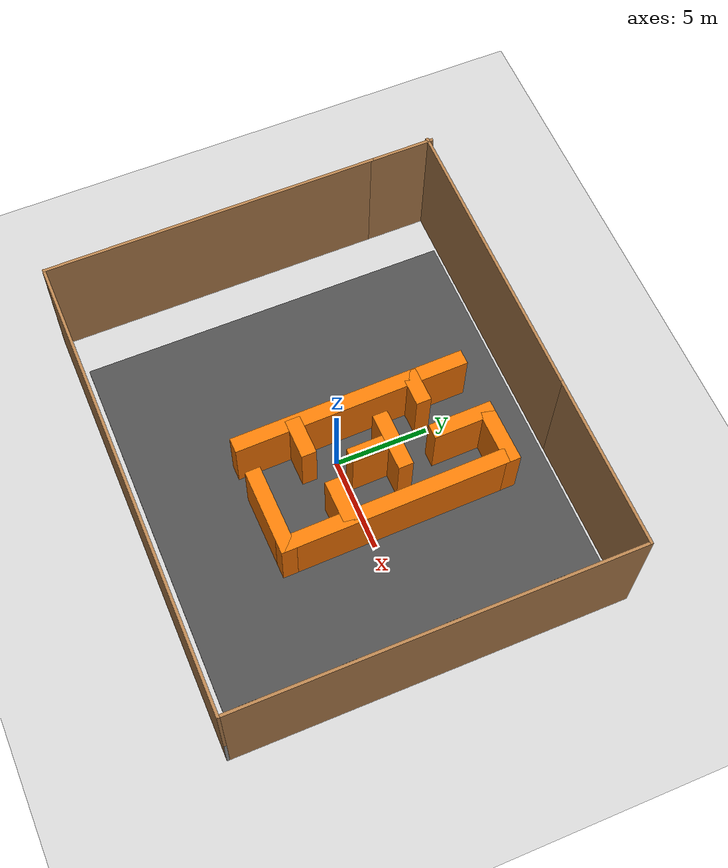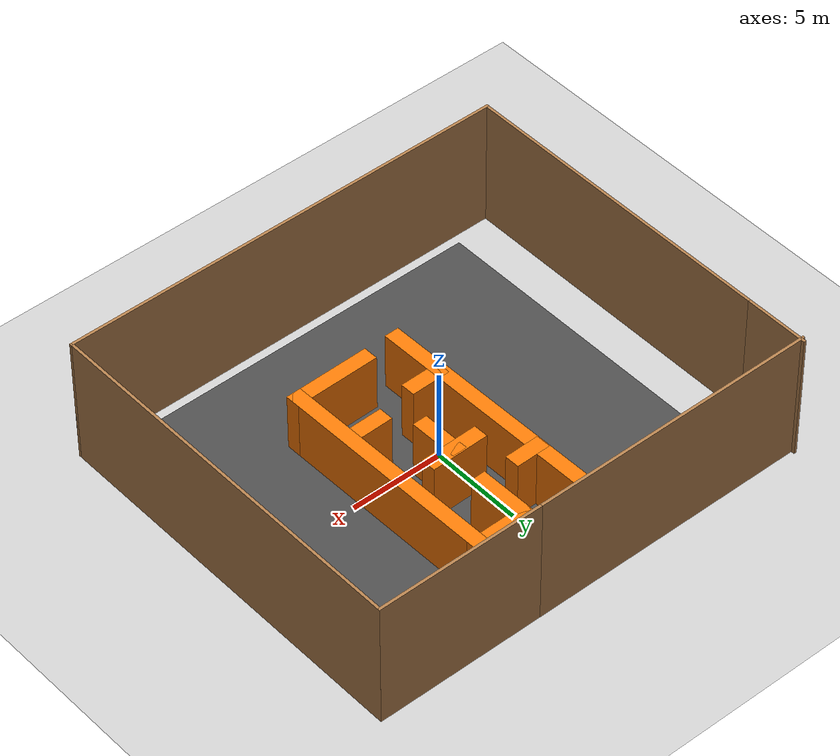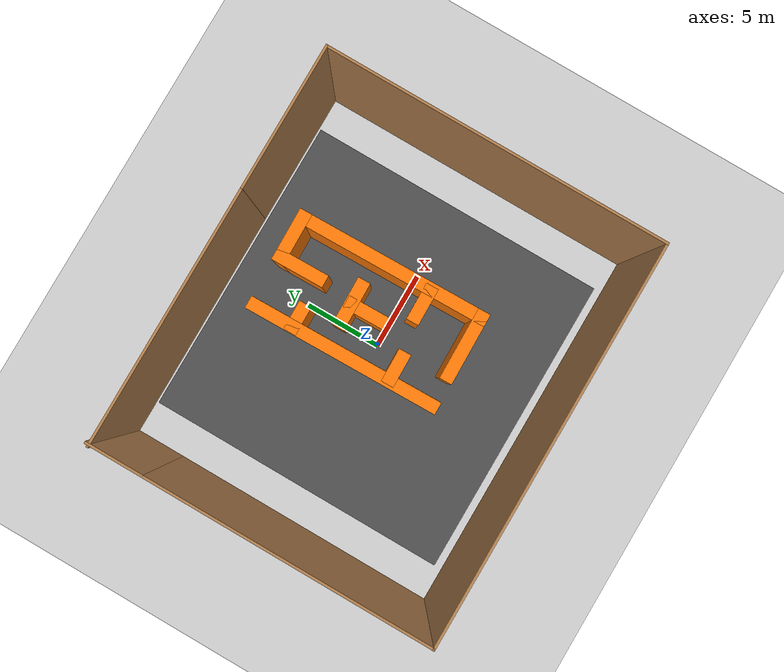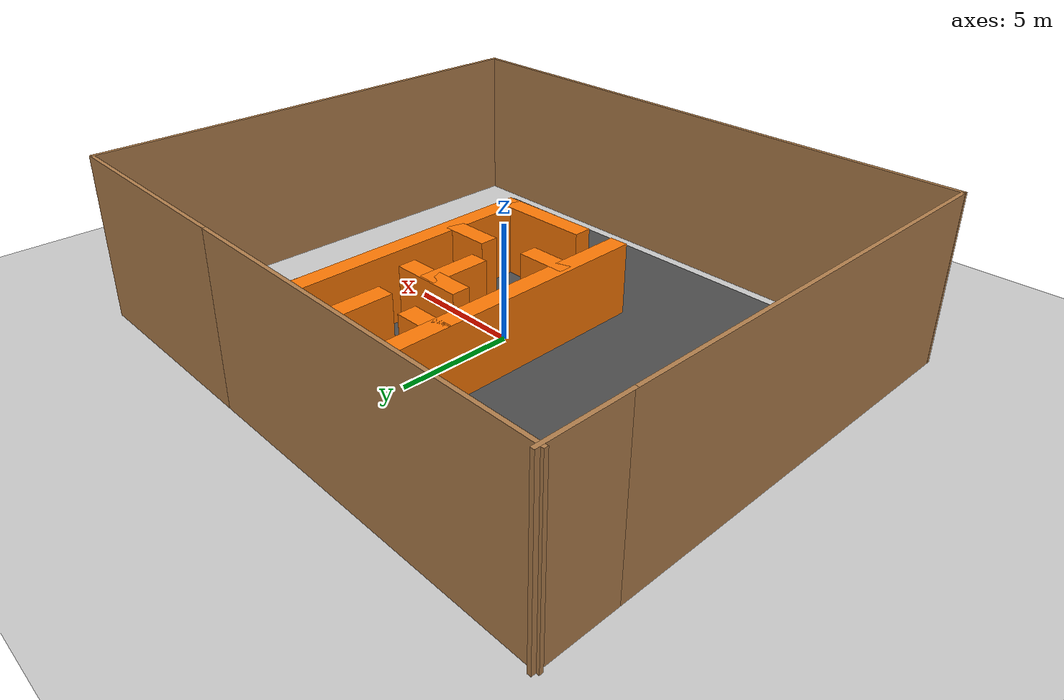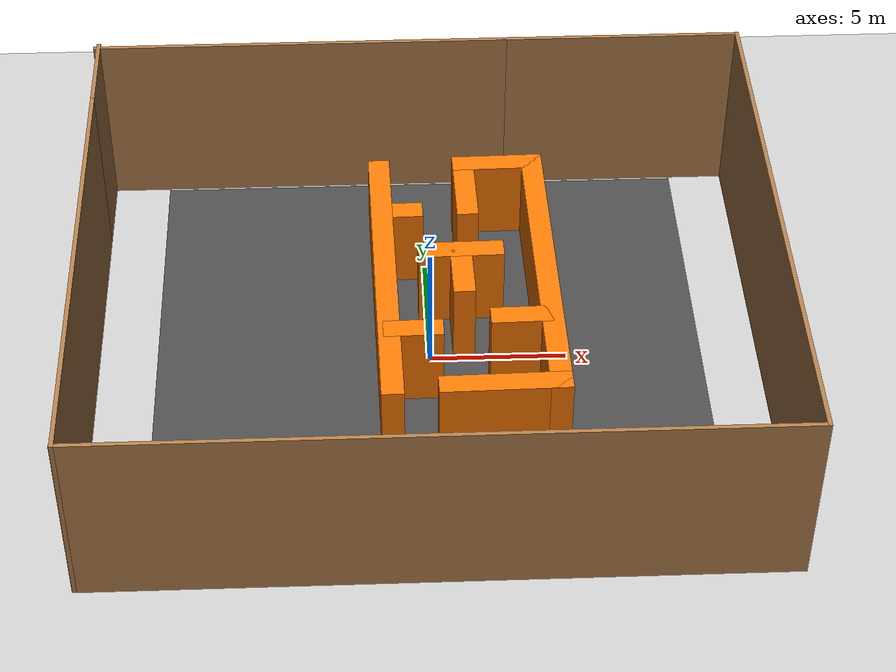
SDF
<sdf version="1.6">
 <world name="default">
  <light name="sun" type="directional">
   <pose>0 0 10 0 -0 0</pose>
   <diffuse>0.8 0.8 0.8 1</diffuse>
   <specular>0.2 0.2 0.2 1</specular>
   <attenuation>
    <range>1000</range>
    <constant>0.9</constant>
    <linear>0.01</linear>
    <quadratic>0.001</quadratic>
   </attenuation>
   <direction>-0.5 0.1 -0.9</direction>
  </light>
  <model name="ground_plane">
   <static>1</static>
   <link name="link">
    <collision name="collision">
     <geometry><plane><normal>0 0 1</normal><size>100 100</size></plane></geometry>
     <surface><friction><ode><mu>100</mu><mu2>50</mu2></ode></friction></surface>
    </collision>
    <visual name="visual">
     <cast_shadows>0</cast_shadows>
     <geometry><plane><normal>0 0 1</normal><size>100 100</size></plane></geometry>
     <material>
      <script><uri>file://media/materials/scripts/gazebo.material</uri><name>Gazebo/Grey</name></script>
     </material>
    </visual>
   </link>
  </model>
  <model name="asphalt_plane">
   <static>1</static>
   <link name="link">
    <collision name="collision"><geometry><box><size>20 20 0.1</size></box></geometry></collision>
    <visual name="visual">
     <cast_shadows>0</cast_shadows>
     <geometry><box><size>20 20 0.1</size></box></geometry>
     <material>
      <script>
       <uri>model://asphalt_plane/materials/scripts</uri>
       <uri>model://asphalt_plane/materials/textures</uri>
       <name>vrc/asphalt</name>
      </script>
     </material>
    </visual>
   </link>
  </model>
  <physics name="default_physics" default="0" type="ode">
   <ode>
    <solver>
     <type>quick</type>
     <iters>10</iters>
     <sor>1.3</sor>
     <use_dynamic_moi_rescaling>0</use_dynamic_moi_rescaling>
    </solver>
    <constraints>
     <cfm>0</cfm>
     <erp>0.2</erp>
     <contact_max_correcting_vel>100</contact_max_correcting_vel>
     <contact_surface_layer>0.001</contact_surface_layer>
    </constraints>
   </ode>
   <max_step_size>0.004</max_step_size>
   <real_time_factor>1</real_time_factor>
   <real_time_update_rate>250</real_time_update_rate>
  </physics>
  <gravity>0 0 -9.8066</gravity>
  <magnetic_field>6e-06 2.3e-05 -4.2e-05</magnetic_field>
  <atmosphere type="adiabatic"/>
  <scene><ambient>0.4 0.4 0.4 1</ambient><background>0.7 0.7 0.7 1</background><shadows>1</shadows></scene>
  <spherical_coordinates>
   <surface_model>EARTH_WGS84</surface_model>
   <latitude_deg>0</latitude_deg>
   <longitude_deg>0</longitude_deg>
   <elevation>0</elevation>
   <heading_deg>0</heading_deg>
  </spherical_coordinates>
  <model name="C_maze">
   <pose>1.35594 1.45495 0 0 0 -1.55385</pose>
   <link name="Wall_0">
    <collision name="Wall_0_Collision">
     <geometry><box><size>12.65 0.8 3.2</size></box></geometry>
     <pose>0 0 1.6 0 -0 0</pose>
    </collision>
    <visual name="Wall_0_Visual">
     <pose>0 0 1.6 0 -0 0</pose>
     <geometry><box><size>12.65 0.8 3.2</size></box></geometry>
     <material>
      <script><uri>file://media/materials/scripts/gazebo.material</uri><name>Gazebo/Grey</name></script>
      <ambient>0.996078 0.47451 0.0196078 1</ambient>
     </material>
     <meta><layer>0</layer></meta>
    </visual>
    <pose>0.035 -2.92505 0 0 -0 0</pose>
   </link>
   <link name="Wall_11">
    <collision name="Wall_11_Collision">
     <geometry><box><size>1.90044 0.8 3.2</size></box></geometry>
     <pose>0 0 1.6 0 -0 0</pose>
    </collision>
    <visual name="Wall_11_Visual">
     <pose>0 0 1.6 0 -0 0</pose>
     <geometry><box><size>1.90044 0.8 3.2</size></box></geometry>
     <material>
      <script><uri>file://media/materials/scripts/gazebo.material</uri><name>Gazebo/Grey</name></script>
      <ambient>0.996078 0.47451 0.0196078 1</ambient>
     </material>
     <meta><layer>0</layer></meta>
    </visual>
    <pose>-3.325 -2.34205 0 0 -0 1.5708</pose>
   </link>
   <link name="Wall_13">
    <collision name="Wall_13_Collision">
     <geometry><box><size>3.15032 0.8 3.2</size></box></geometry>
     <pose>0 0 1.6 0 -0 0</pose>
    </collision>
    <visual name="Wall_13_Visual">
     <pose>0 0 1.6 0 -0 0</pose>
     <geometry><box><size>3.15032 0.8 3.2</size></box></geometry>
     <material>
      <script><uri>file://media/materials/scripts/gazebo.material</uri><name>Gazebo/Grey</name></script>
      <ambient>0.996078 0.47451 0.0196078 1</ambient>
     </material>
     <meta><layer>0</layer></meta>
    </visual>
    <pose>-1.017 -0.096053 0 0 -0 -1.5708</pose>
   </link>
   <link name="Wall_15">
    <collision name="Wall_15_Collision">
     <geometry><box><size>2.65022 0.8 3.2</size></box></geometry>
     <pose>0 0 1.6 0 -0 0</pose>
    </collision>
    <visual name="Wall_15_Visual">
     <pose>0 0 1.6 0 -0 0</pose>
     <geometry><box><size>2.65022 0.8 3.2</size></box></geometry>
     <material>
      <script><uri>file://media/materials/scripts/gazebo.material</uri><name>Gazebo/Grey</name></script>
      <ambient>0.996078 0.47451 0.0196078 1</ambient>
     </material>
     <meta><layer>0</layer></meta>
    </visual>
    <pose>-0.022 -0.111053 0 0 -0 0</pose>
   </link>
   <link name="Wall_17">
    <collision name="Wall_17_Collision">
     <geometry><box><size>2.40025 0.8 3.2</size></box></geometry>
     <pose>0 0 1.6 0 -0 0</pose>
    </collision>
    <visual name="Wall_17_Visual">
     <pose>0 0 1.6 0 -0 0</pose>
     <geometry><box><size>2.40025 0.8 3.2</size></box></geometry>
     <material>
      <script><uri>file://media/materials/scripts/gazebo.material</uri><name>Gazebo/Grey</name></script>
      <ambient>0.996078 0.47451 0.0196078 1</ambient>
     </material>
     <meta><layer>0</layer></meta>
    </visual>
    <pose>2.604 1.92295 0 0 -0 -1.5708</pose>
   </link>
   <link name="Wall_19">
    <collision name="Wall_19_Collision">
     <geometry><box><size>2.14985 0.8 3.2</size></box></geometry>
     <pose>0 0 1.6 0 -0 0</pose>
    </collision>
    <visual name="Wall_19_Visual">
     <pose>0 0 1.6 0 -0 0</pose>
     <geometry><box><size>2.14985 0.8 3.2</size></box></geometry>
     <material>
      <script><uri>file://media/materials/scripts/gazebo.material</uri><name>Gazebo/Grey</name></script>
      <ambient>0.996078 0.47451 0.0196078 1</ambient>
     </material>
     <meta><layer>0</layer></meta>
    </visual>
    <pose>3.093 -2.05905 0 0 -0 1.5708</pose>
   </link>
   <link name="Wall_2">
    <collision name="Wall_2_Collision">
     <geometry><box><size>12.7201 0.8 3.2</size></box></geometry>
     <pose>0 0 1.6 0 -0 0</pose>
    </collision>
    <visual name="Wall_2_Visual">
     <pose>0 0 1.6 0 -0 0</pose>
     <geometry><box><size>12.7201 0.8 3.2</size></box></geometry>
     <material>
      <script><uri>file://media/materials/scripts/gazebo.material</uri><name>Gazebo/Grey</name></script>
      <ambient>0.996078 0.47451 0.0196078 1</ambient>
     </material>
     <meta><layer>0</layer></meta>
    </visual>
    <pose>0 2.92495 0 0 -0 3.14159</pose>
   </link>
   <link name="Wall_22">
    <collision name="Wall_22_Collision">
     <geometry><box><size>4.65 0.8 3.2</size></box></geometry>
     <pose>0 0 1.6 0 -0 0</pose>
    </collision>
    <visual name="Wall_22_Visual">
     <pose>0 0 1.6 0 -0 0</pose>
     <geometry><box><size>4.65 0.8 3.2</size></box></geometry>
     <material>
      <script><uri>file://media/materials/scripts/gazebo.material</uri><name>Gazebo/Grey</name></script>
      <ambient>0.996078 0.47451 0.0196078 1</ambient>
     </material>
     <meta><layer>0</layer></meta>
    </visual>
    <pose>5.96 0.999947 0 0 -0 -1.5708</pose>
   </link>
   <link name="Wall_7">
    <collision name="Wall_7_Collision">
     <geometry><box><size>3.43521 0.8 3.2</size></box></geometry>
     <pose>0 0 1.6 0 -0 0</pose>
    </collision>
    <visual name="Wall_7_Visual">
     <pose>0 0 1.6 0 -0 0</pose>
     <geometry><box><size>3.43521 0.8 3.2</size></box></geometry>
     <material>
      <script><uri>file://media/materials/scripts/gazebo.material</uri><name>Gazebo/Grey</name></script>
      <ambient>0.996078 0.47451 0.0196078 1</ambient>
     </material>
     <meta><layer>0</layer></meta>
    </visual>
    <pose>-5.96 1.60745 0 0 -0 -1.5708</pose>
   </link>
   <link name="Wall_9">
    <collision name="Wall_9_Collision">
     <geometry><box><size>3.4 0.8 3.2</size></box></geometry>
     <pose>0 0 1.6 0 -0 0</pose>
    </collision>
    <visual name="Wall_9_Visual">
     <pose>0 0 1.6 0 -0 0</pose>
     <geometry><box><size>3.4 0.8 3.2</size></box></geometry>
     <material>
      <script><uri>file://media/materials/scripts/gazebo.material</uri><name>Gazebo/Grey</name></script>
      <ambient>0.996078 0.47451 0.0196078 1</ambient>
     </material>
     <meta><layer>0</layer></meta>
    </visual>
    <pose>-4.66 0.289947 0 0 -0 0</pose>
   </link>
   <static>1</static>
  </model>
  <model name="wall_all">
   <pose>-0.0773 -0.08909 0 0 -0 0</pose>
   <link name="Wall_10">
    <collision name="Wall_10_Collision">
     <geometry><box><size>17.75 0.15 7</size></box></geometry>
     <pose>0 0 3.5 0 -0 0</pose>
    </collision>
    <visual name="Wall_10_Visual">
     <pose>0 0 3.5 0 -0 0</pose>
     <geometry><box><size>17.75 0.15 7</size></box></geometry>
     <material>
      <script><uri>file://media/materials/scripts/gazebo.material</uri><name>Gazebo/Wood</name></script>
      <ambient>1 1 1 1</ambient>
     </material>
     <meta><layer>0</layer></meta>
    </visual>
    <pose>-12.115 -1.675 0 0 -0 1.5708</pose>
   </link>
   <link name="Wall_11">
    <collision name="Wall_11_Collision">
     <geometry><box><size>3.5 0.15 7</size></box></geometry>
     <pose>0 0 3.5 0 -0 0</pose>
    </collision>
    <visual name="Wall_11_Visual">
     <pose>0 0 3.5 0 -0 0</pose>
     <geometry><box><size>3.5 0.15 7</size></box></geometry>
     <material>
      <script><uri>file://media/materials/scripts/gazebo.material</uri><name>Gazebo/Wood</name></script>
      <ambient>1 1 1 1</ambient>
     </material>
     <meta><layer>0</layer></meta>
    </visual>
    <pose>-12.115 8.8 0 0 -0 1.5708</pose>
   </link>
   <link name="Wall_2">
    <collision name="Wall_2_Collision">
     <geometry><box><size>15.703 0.15 7</size></box></geometry>
     <pose>0 0 3.5 0 -0 0</pose>
    </collision>
    <visual name="Wall_2_Visual">
     <pose>0 0 3.5 0 -0 0</pose>
     <geometry><box><size>15.703 0.15 7</size></box></geometry>
     <material>
      <script><uri>file://media/materials/scripts/gazebo.material</uri><name>Gazebo/Wood</name></script>
      <ambient>1 1 1 1</ambient>
     </material>
     <meta><layer>0</layer></meta>
    </visual>
    <pose>-4.4485 10.297 0 0 -0 3.14159</pose>
   </link>
   <link name="Wall_5">
    <collision name="Wall_5_Collision">
     <geometry><box><size>9.04652 0.15 7</size></box></geometry>
     <pose>0 0 3.5 0 -0 0</pose>
    </collision>
    <visual name="Wall_5_Visual">
     <pose>0 0 3.5 0 -0 0</pose>
     <geometry><box><size>9.04652 0.15 7</size></box></geometry>
     <material>
      <script><uri>file://media/materials/scripts/gazebo.material</uri><name>Gazebo/Wood</name></script>
      <ambient>1 1 1 1</ambient>
     </material>
     <meta><layer>0</layer></meta>
    </visual>
    <pose>7.7765 10.297 0 0 -0 0</pose>
   </link>
   <link name="Wall_6">
    <collision name="Wall_6_Collision">
     <geometry><box><size>20.9219 0.15 7</size></box></geometry>
     <pose>0 0 3.5 0 -0 0</pose>
    </collision>
    <visual name="Wall_6_Visual">
     <pose>0 0 3.5 0 -0 0</pose>
     <geometry><box><size>20.9219 0.15 7</size></box></geometry>
     <material>
      <script><uri>file://media/materials/scripts/gazebo.material</uri><name>Gazebo/Wood</name></script>
      <ambient>1 1 1 1</ambient>
     </material>
     <meta><layer>0</layer></meta>
    </visual>
    <pose>12.225 -0.089 0 0 -0 -1.5708</pose>
   </link>
   <link name="Wall_7">
    <collision name="Wall_7_Collision">
     <geometry><box><size>0.15 0.15 2.5</size></box></geometry>
     <pose>0 0 1.25 0 -0 0</pose>
    </collision>
    <visual name="Wall_7_Visual">
     <pose>0 0 1.25 0 -0 0</pose>
     <geometry><box><size>0.15 0.15 2.5</size></box></geometry>
     <material>
      <script><uri>file://media/materials/scripts/gazebo.material</uri><name>Gazebo/Grey</name></script>
      <ambient>1 1 1 1</ambient>
     </material>
     <meta><layer>0</layer></meta>
    </visual>
    <pose>12.225 -10.475 0 0 -0 0</pose>
   </link>
   <link name="Wall_8">
    <collision name="Wall_8_Collision">
     <geometry><box><size>24.5 0.15 7</size></box></geometry>
     <pose>0 0 3.5 0 -0 0</pose>
    </collision>
    <visual name="Wall_8_Visual">
     <pose>0 0 3.5 0 -0 0</pose>
     <geometry><box><size>24.5 0.15 7</size></box></geometry>
     <material>
      <script><uri>file://media/materials/scripts/gazebo.material</uri><name>Gazebo/Wood</name></script>
      <ambient>1 1 1 1</ambient>
     </material>
     <meta><layer>0</layer></meta>
    </visual>
    <pose>0.049999 -10.475 0 0 -0 3.14159</pose>
   </link>
   <link name="Wall_9">
    <collision name="Wall_9_Collision">
     <geometry><box><size>0.16 0.15 2.5</size></box></geometry>
     <pose>0 0 1.25 0 -0 0</pose>
    </collision>
    <visual name="Wall_9_Visual">
     <pose>0 0 1.25 0 -0 0</pose>
     <geometry><box><size>0.16 0.15 2.5</size></box></geometry>
     <material>
      <script><uri>file://media/materials/scripts/gazebo.material</uri><name>Gazebo/Grey</name></script>
      <ambient>1 1 1 1</ambient>
     </material>
     <meta><layer>0</layer></meta>
    </visual>
    <pose>-12.12 -10.475 0 0 -0 0</pose>
   </link>
   <static>1</static>
  </model>
 </world>
</sdf>
